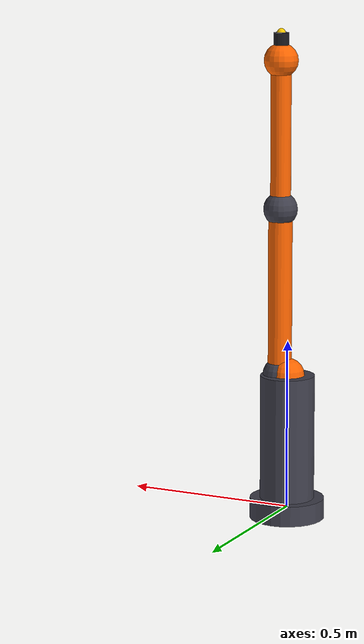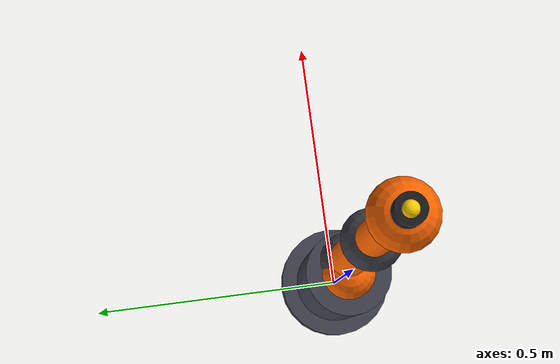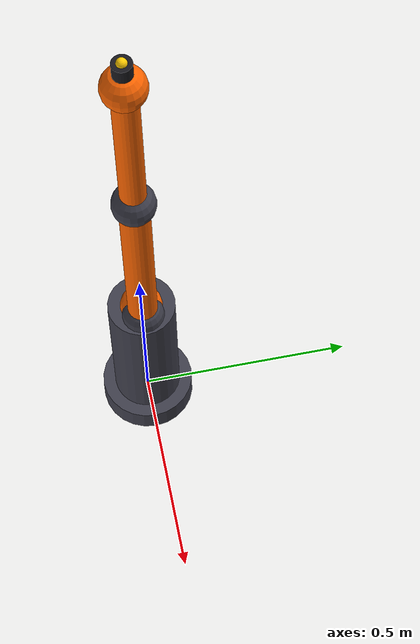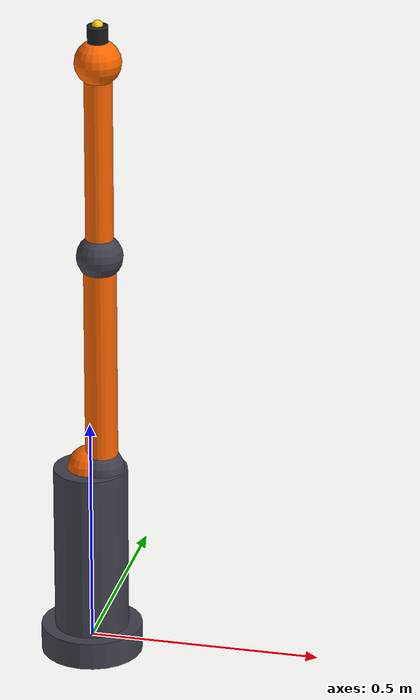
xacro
<?xml version="1.0" ?>
<robot name="poe_kuka_robot" xmlns:xacro="http://ros.org/wiki/xacro">

  <xacro:property name="PI"       value="3.14159265358979"/>
  <xacro:property name="D_BASE"   value="0.400"/>  <!-- base to shoulder height -->
  <xacro:property name="D_SHX"   value="0.025"/>  <!-- lateral shoulder offset (X) -->
  <xacro:property name="L_UPPER" value="0.490"/>  <!-- shoulder to elbow (Z) -->
  <xacro:property name="L_FORE"  value="0.430"/>  <!-- elbow to wrist pivot (Z) -->
  <xacro:property name="D_TOOL"  value="0.080"/>  <!-- wrist to flange -->
  <xacro:property name="R"       value="0.035"/>  <!-- link tube radius -->
  <xacro:property name="R_JNT"   value="0.050"/>  <!-- joint sphere radius -->
  <xacro:property name="M"       value="2.0"/>    <!-- generic link mass -->

  <link name="world"/>
  <joint name="world_to_base" type="fixed">
    <parent link="world"/>
    <child  link="base_link"/>
    <origin xyz="0 0 0" rpy="0 0 0"/>
  </joint>

  <!-- base pedestal -->
  <link name="base_link">
    <inertial>
      <origin xyz="0 0 ${D_BASE/2}" rpy="0 0 0"/>
      <mass value="15.0"/>
      <inertia ixx="0.20" ixy="0" ixz="0" iyy="0.20" iyz="0" izz="0.08"/>
    </inertial>
    <visual>
      <origin xyz="0 0 ${D_BASE/2}" rpy="0 0 0"/>
      <geometry><cylinder radius="0.080" length="${D_BASE}"/></geometry>
      <material name="kuka_grey"><color rgba="0.25 0.25 0.30 1"/></material>
    </visual>
    <visual>
      <origin xyz="0 0 0" rpy="0 0 0"/>
      <geometry><cylinder radius="0.110" length="0.06"/></geometry>
      <material name="kuka_grey"><color rgba="0.25 0.25 0.30 1"/></material>
    </visual>
    <collision>
      <origin xyz="0 0 ${D_BASE/2}" rpy="0 0 0"/>
      <geometry><cylinder radius="0.080" length="${D_BASE}"/></geometry>
    </collision>
  </link>

  <!-- J0: waist — revolute Z -->
  <joint name="JOINT_0_ACT" type="revolute">
    <parent link="base_link"/>
    <child  link="link_1"/>
    <origin xyz="0 0 ${D_BASE}" rpy="0 0 0"/>
    <axis xyz="0 0 1"/>
    <limit lower="${-2.97}" upper="${2.97}" effort="360" velocity="1.74"/>
    <dynamics damping="1.2" friction="0.4"/>
  </joint>

  <!-- link_1: shoulder hub with lateral stub in X to J1 -->
  <link name="link_1">
    <inertial>
      <origin xyz="${D_SHX/2} 0 0" rpy="0 ${PI/2} 0"/>
      <mass value="1.0"/>
      <inertia ixx="0.005" ixy="0" ixz="0" iyy="0.005" iyz="0" izz="0.002"/>
    </inertial>
    <visual>
      <origin xyz="0 0 0" rpy="0 0 0"/>
      <geometry><sphere radius="${R_JNT}"/></geometry>
      <material name="kuka_orange"><color rgba="1.0 0.40 0.0 1"/></material>
    </visual>
    <visual>
      <origin xyz="${D_SHX/2} 0 0" rpy="0 ${PI/2} 0"/>
      <geometry><cylinder radius="${R*0.7}" length="${D_SHX}"/></geometry>
      <material name="kuka_grey"><color rgba="0.25 0.25 0.30 1"/></material>
    </visual>
    <collision>
      <origin xyz="${D_SHX/2} 0 0" rpy="0 ${PI/2} 0"/>
      <geometry><cylinder radius="${R*0.7}" length="${D_SHX}"/></geometry>
    </collision>
  </link>

  <!-- J1: shoulder pitch — revolute Y (lateral offset D_SHX in X) -->
  <joint name="JOINT_1_ACT" type="revolute">
    <parent link="link_1"/>
    <child  link="link_2"/>
    <origin xyz="${D_SHX} 0 0" rpy="0 0 0"/>
    <axis xyz="0 1 0"/>
    <limit lower="${-2.09}" upper="${2.09}" effort="360" velocity="1.74"/>
    <dynamics damping="1.2" friction="0.4"/>
  </joint>

  <!-- link_2: upper arm along Z (shoulder to elbow) -->
  <link name="link_2">
    <inertial>
      <origin xyz="0 0 ${L_UPPER/2}" rpy="0 0 0"/>
      <mass value="${M * 1.5}"/>
      <inertia ixx="0.06" ixy="0" ixz="0" iyy="0.06" iyz="0" izz="0.008"/>
    </inertial>
    <visual>
      <origin xyz="0 0 ${L_UPPER/2}" rpy="0 0 0"/>
      <geometry><cylinder radius="${R}" length="${L_UPPER}"/></geometry>
      <material name="kuka_orange"><color rgba="1.0 0.40 0.0 1"/></material>
    </visual>
    <visual>
      <origin xyz="0 0 0" rpy="0 0 0"/>
      <geometry><sphere radius="${R_JNT}"/></geometry>
      <material name="kuka_grey"><color rgba="0.25 0.25 0.30 1"/></material>
    </visual>
    <collision>
      <origin xyz="0 0 ${L_UPPER/2}" rpy="0 0 0"/>
      <geometry><cylinder radius="${R}" length="${L_UPPER}"/></geometry>
    </collision>
  </link>

  <!-- J2: elbow pitch — revolute Y (parallel to J1) -->
  <joint name="JOINT_2_ACT" type="revolute">
    <parent link="link_2"/>
    <child  link="link_3"/>
    <origin xyz="0 0 ${L_UPPER}" rpy="0 0 0"/>
    <axis xyz="0 1 0"/>
    <limit lower="${-2.09}" upper="${2.09}" effort="200" velocity="2.27"/>
    <dynamics damping="0.9" friction="0.3"/>
  </joint>

  <!-- link_3: forearm along Z (elbow to wrist pivot) -->
  <link name="link_3">
    <inertial>
      <origin xyz="0 0 ${L_FORE/2}" rpy="0 0 0"/>
      <mass value="${M * 1.2}"/>
      <inertia ixx="0.04" ixy="0" ixz="0" iyy="0.04" iyz="0" izz="0.006"/>
    </inertial>
    <visual>
      <origin xyz="0 0 ${L_FORE/2}" rpy="0 0 0"/>
      <geometry><cylinder radius="${R*0.85}" length="${L_FORE}"/></geometry>
      <material name="kuka_orange"><color rgba="1.0 0.40 0.0 1"/></material>
    </visual>
    <visual>
      <origin xyz="0 0 0" rpy="0 0 0"/>
      <geometry><sphere radius="${R_JNT}"/></geometry>
      <material name="kuka_grey"><color rgba="0.25 0.25 0.30 1"/></material>
    </visual>
    <collision>
      <origin xyz="0 0 ${L_FORE/2}" rpy="0 0 0"/>
      <geometry><cylinder radius="${R*0.85}" length="${L_FORE}"/></geometry>
    </collision>
  </link>

  <!-- J3: wrist roll — revolute Z (at wrist pivot) -->
  <joint name="JOINT_3_ACT" type="revolute">
    <parent link="link_3"/>
    <child  link="link_4"/>
    <origin xyz="0 0 ${L_FORE}" rpy="0 0 0"/>
    <axis xyz="0 0 1"/>
    <limit lower="${-3.14}" upper="${3.14}" effort="120" velocity="3.14"/>
    <dynamics damping="0.6" friction="0.15"/>
  </joint>

  <!-- link_4: wrist hub 1 (J3/J4 concurrent) -->
  <link name="link_4">
    <inertial>
      <origin xyz="0 0 0" rpy="0 0 0"/>
      <mass value="0.5"/>
      <inertia ixx="0.002" ixy="0" ixz="0" iyy="0.002" iyz="0" izz="0.001"/>
    </inertial>
    <visual>
      <origin xyz="0 0 0" rpy="0 0 0"/>
      <geometry><sphere radius="${R_JNT}"/></geometry>
      <material name="kuka_orange"><color rgba="1.0 0.40 0.0 1"/></material>
    </visual>
    <collision>
      <origin xyz="0 0 0" rpy="0 0 0"/>
      <geometry><sphere radius="${R_JNT}"/></geometry>
    </collision>
  </link>

  <!-- J4: wrist pitch — revolute Y (concurrent with J3) -->
  <joint name="JOINT_4_ACT" type="revolute">
    <parent link="link_4"/>
    <child  link="link_5"/>
    <origin xyz="0 0 0" rpy="0 0 0"/>
    <axis xyz="0 1 0"/>
    <limit lower="${-2.09}" upper="${2.09}" effort="120" velocity="3.14"/>
    <dynamics damping="0.4" friction="0.1"/>
  </joint>

  <!-- link_5: wrist hub 2 (J4/J5 concurrent) -->
  <link name="link_5">
    <inertial>
      <origin xyz="0 0 0" rpy="0 0 0"/>
      <mass value="0.3"/>
      <inertia ixx="0.001" ixy="0" ixz="0" iyy="0.001" iyz="0" izz="0.0005"/>
    </inertial>
    <visual>
      <origin xyz="0 0 0" rpy="0 0 0"/>
      <geometry><sphere radius="${R_JNT*0.8}"/></geometry>
      <material name="kuka_grey"><color rgba="0.25 0.25 0.30 1"/></material>
    </visual>
    <collision>
      <origin xyz="0 0 0" rpy="0 0 0"/>
      <geometry><sphere radius="${R_JNT*0.8}"/></geometry>
    </collision>
  </link>

  <!-- J5: wrist roll — revolute Z (concurrent with J3, J4 → spherical wrist) -->
  <joint name="JOINT_5_ACT" type="revolute">
    <parent link="link_5"/>
    <child  link="link_6"/>
    <origin xyz="0 0 0" rpy="0 0 0"/>
    <axis xyz="0 0 1"/>
    <limit lower="${-3.14}" upper="${3.14}" effort="50" velocity="4.18"/>
    <dynamics damping="0.2" friction="0.05"/>
  </joint>

  <!-- link_6: flange + TCP marker -->
  <link name="link_6">
    <inertial>
      <origin xyz="0 0 ${D_TOOL/2}" rpy="0 0 0"/>
      <mass value="0.2"/>
      <inertia ixx="0.0005" ixy="0" ixz="0" iyy="0.0005" iyz="0" izz="0.0002"/>
    </inertial>
    <visual>
      <origin xyz="0 0 ${D_TOOL/2}" rpy="0 0 0"/>
      <geometry><cylinder radius="0.022" length="${D_TOOL}"/></geometry>
      <material name="kuka_dark"><color rgba="0.10 0.10 0.12 1"/></material>
    </visual>
    <visual>
      <origin xyz="0 0 ${D_TOOL}" rpy="0 0 0"/>
      <geometry><sphere radius="0.012"/></geometry>
      <material name="kuka_tcp"><color rgba="1.0 0.8 0.0 1"/></material>
    </visual>
    <collision>
      <origin xyz="0 0 ${D_TOOL/2}" rpy="0 0 0"/>
      <geometry><cylinder radius="0.022" length="${D_TOOL}"/></geometry>
    </collision>
  </link>

</robot>
